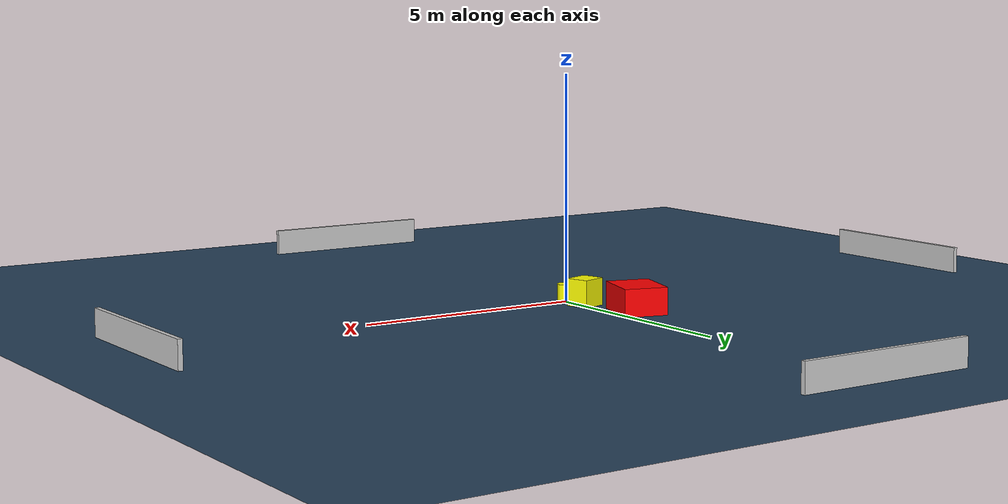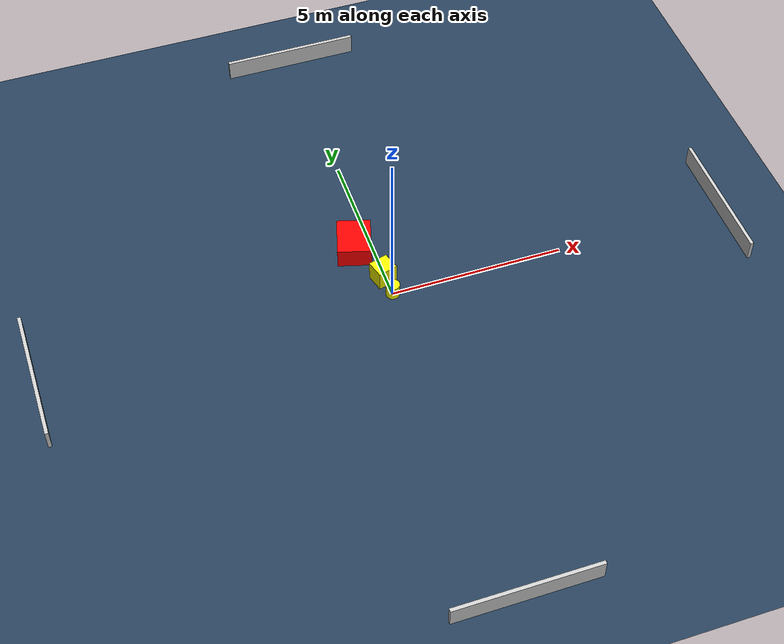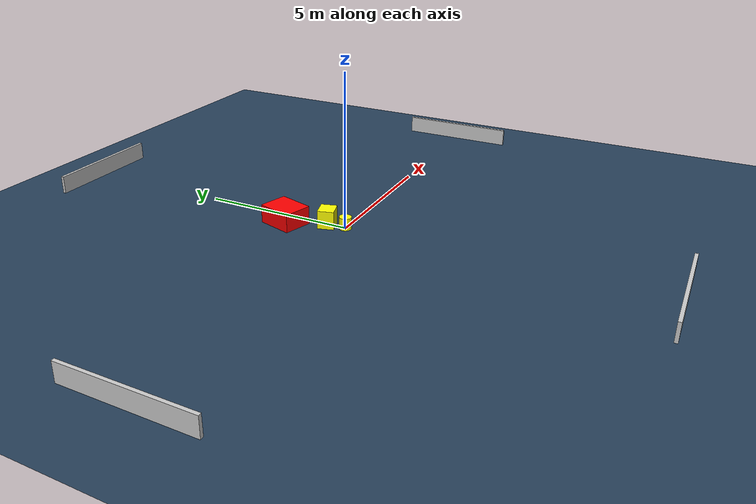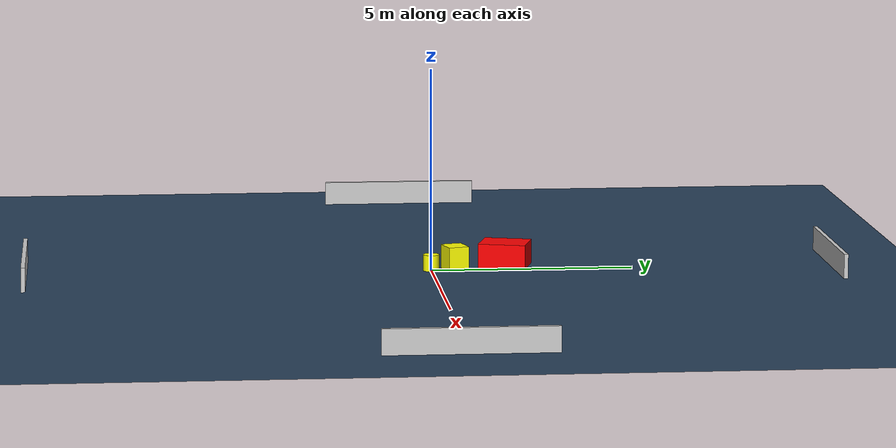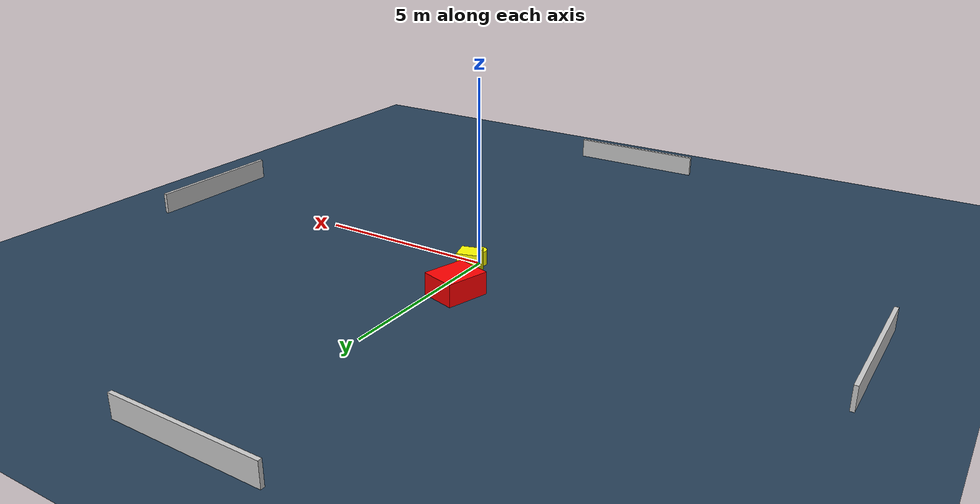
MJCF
<?xml version="1.0" ?>
<mujoco model="generated_environment">
  <option timestep="0.01" integrator="RK4" cone="elliptic"/>
  <default>
    <geom density="1"/>
  </default>
  <asset>
    <texture builtin="gradient" height="3072" name="skybox" rgb1="0.3 0.5 0.7" rgb2="0 0 0" type="skybox" width="512"/>
    <texture builtin="checker" height="300" name="groundplane" rgb1="0.2 0.3 0.4" rgb2="0.1 0.2 0.3" type="2d" width="300"/>
    <material name="groundplane" reflectance="0.2" texrepeat="5 5" texture="groundplane"/>
  </asset>
  <worldbody>
    <light dir="0 0 -1" directional="true" pos="0 0 1.5"/>
    <geom condim="3" friction="0.5 0.005 0.001" material="groundplane" name="floor" pos="0 0 0" size="0 0 0.05" type="plane"/>
    <body name="walls">
      <geom name="wall_1" condim="4" pos="-10.0 0.0 0.3" rgba="0.800000011920929 0.800000011920929 0.800000011920929 1.0" size="0.05 2.0 0.3" type="box"/>
      <geom name="wall_2" condim="4" pos="10.0 0.0 0.3" rgba="0.800000011920929 0.800000011920929 0.800000011920929 1.0" size="0.05 2.0 0.3" type="box"/>
      <geom name="wall_3" condim="4" pos="0.0 -10.0 0.3" rgba="0.800000011920929 0.800000011920929 0.800000011920929 1.0" size="2.0 0.05 0.3" type="box"/>
      <geom name="wall_4" condim="4" pos="0.0 10.0 0.3" rgba="0.800000011920929 0.800000011920929 0.800000011920929 1.0" size="2.0 0.05 0.3" type="box"/>
    </body>
    <body name="robot">
      <joint name="joint_x" type="slide" pos="0 0 0" axis="1 0 0"/>
      <joint name="joint_y" type="slide" pos="0 0 0" axis="0 1 0"/>
      <geom name="robot" type="cylinder" pos="0.0 0.0 0.2" size="0.2 0.2 0.0" mass="5.0" friction="1.0 0.005 0.0001" condim="4" rgba="1.0 1.0 0.0 1.0"/>
    </body>
    <body name="obstacle_1_movable">
      <geom name="obstacle_1_movable" condim="4" pos="-0.08246607505674658 0.5967575123767112 0.3" euler="0 0 285.959464368053" friction="0.0 0.005 0.001" rgba="1.0 1.0 0.0 1.0" size="0.26084645901331394 0.28491841998099043 0.3" type="box" mass="0.1"/>
      <joint type="free"/>
    </body>
    <body name="obstacle_2_static">
      <geom name="obstacle_2_static" condim="4" pos="-0.5151067021360223 1.8870719594576317 0.3" euler="0 0 253.65360188558228" friction="0.0 0.005 0.001" rgba="1.0 0.0 0.0 1.0" size="0.5893238264061731 0.48171457751674585 0.3" type="box"/>
    </body>
  </worldbody>
  <actuator>
    <motor name="actuator_x" joint="joint_x" gear="1" ctrlrange="-1 1"/>
    <motor name="actuator_y" joint="joint_y" gear="1" ctrlrange="-1 1"/>
  </actuator>
</mujoco>
